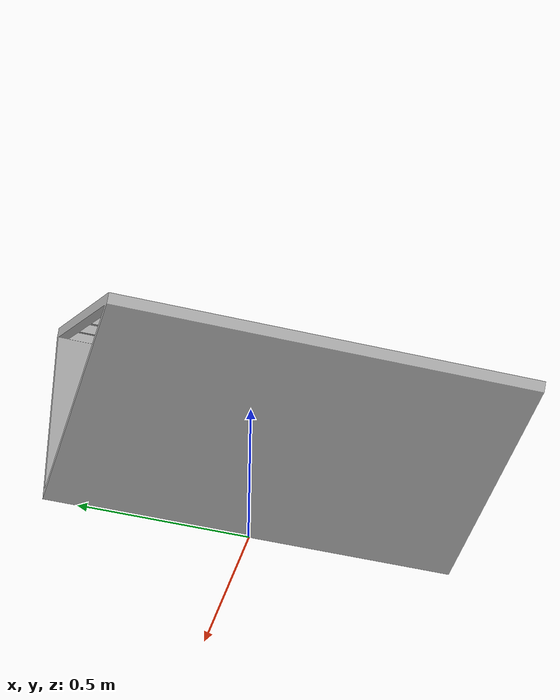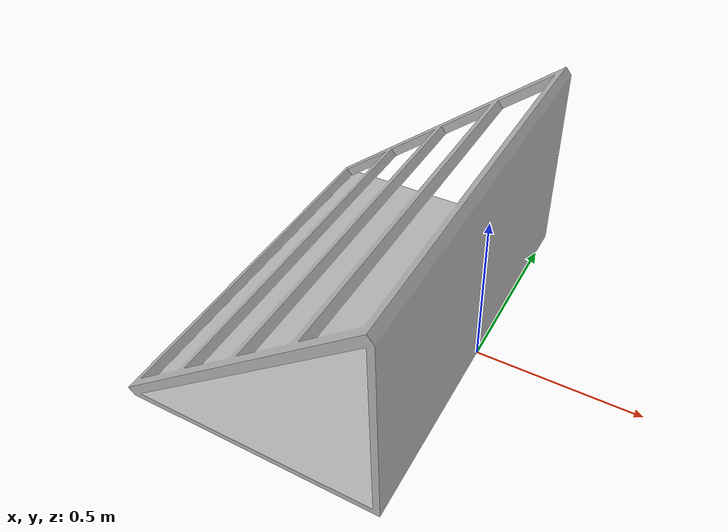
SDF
<?xml version='1.0'?>
<sdf version='1.6'>
  <model name='model-ladder'>
    <static>true</static>
    <link name='base_link'>
      <pose frame=''>0 0 0 0 -0 0</pose>
      <inertial>
        <pose frame=''>-0.25602 -0 0.17877 0 -0 0</pose>
        <mass>108.9</mass>
        <inertia>
          <ixx>18.754</ixx>
          <ixy>-1.6782e-14</ixy>
          <ixz>-3.1724</ixz>
          <iyy>12.372</iyy>
          <iyz>-3.7281e-15</iyz>
          <izz>21.63</izz>
        </inertia>
      </inertial>
      <collision name='base_link_collision'>
        <pose frame=''>0 0 0 0 -0 0</pose>
        <geometry>
          <mesh>
            <scale>1 1 1</scale>
            <uri>model://model-ladder/meshes/base_link.STL</uri>
          </mesh>
        </geometry>
        <surface>
          <contact>
            <collide_bitmask>65535</collide_bitmask>
            <ode/>
          </contact>
          <friction>
            <ode>
              <mu>100</mu>
              <mu2>50</mu2>
            </ode>
            <torsional>
              <ode/>
            </torsional>
          </friction>
          <bounce/>
        </surface>
      </collision>
      <visual name='base_link_visual'>
        <pose frame=''>0 0 0 0 -0 0</pose>
        <geometry>
          <mesh>
            <scale>1 1 1</scale>
            <uri>model://model-ladder/meshes/base_link.STL</uri>
          </mesh>
        </geometry>
      </visual>
    </link>
  </model>
</sdf>
